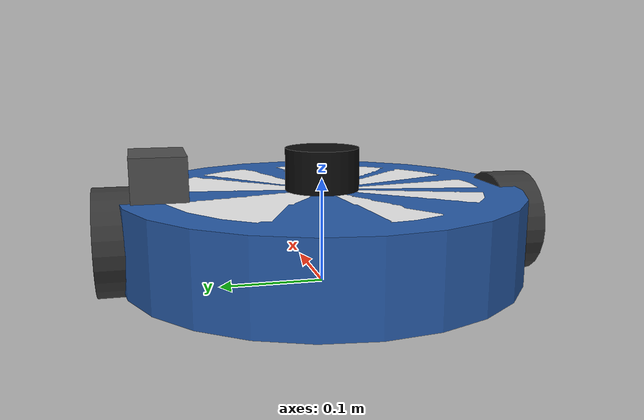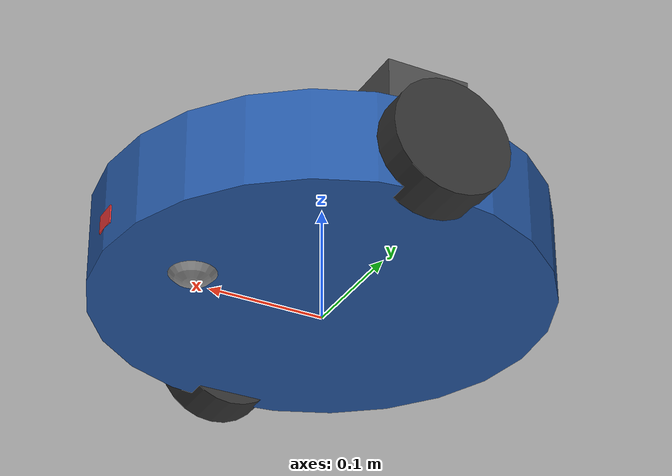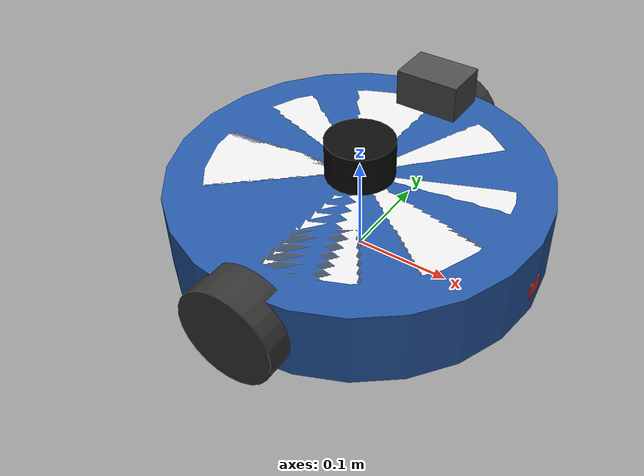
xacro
<?xml version="1.0"?>
<robot xmlns:xacro="http://www.ros.org/wiki/xacro" name="ground_robot">

  <!-- PROPERTIES / CONSTANTS -->
  <xacro:property name="robot_name"      value="ground_cleaner"/>
  <xacro:property name="base_radius"     value="0.19"/>
  <xacro:property name="base_height"     value="0.08"/>
  <xacro:property name="base_mass"       value="6.0"/>

  <xacro:property name="wheel_radius"    value="0.05"/>
  <xacro:property name="wheel_width"     value="0.04"/>
  <xacro:property name="wheel_mass"      value="0.5"/>
  <xacro:property name="wheel_separation" value="0.38"/>

  <xacro:property name="caster_radius"   value="0.025"/>
  <xacro:property name="caster_mass"     value="0.1"/>

  <xacro:property name="lidar_radius"    value="0.035"/>
  <xacro:property name="lidar_height"    value="0.04"/>
  <xacro:property name="lidar_mass"      value="0.15"/>

  <xacro:property name="imu_size"        value="0.02"/>
  <xacro:property name="imu_mass"        value="0.05"/>

  <!-- PI constant -->
  <xacro:property name="PI" value="3.14159265358979"/>

  <!-- INERTIA MACROS -->
  <xacro:macro name="box_inertia" params="m x y z">
    <inertia  ixx="${m*(y*y+z*z)/12}" ixy="0" ixz="0"
              iyy="${m*(x*x+z*z)/12}" iyz="0"
              izz="${m*(x*x+y*y)/12}" />
  </xacro:macro>

  <xacro:macro name="cylinder_inertia" params="m r h">
    <inertia  ixx="${m*(3*r*r+h*h)/12}" ixy="0" ixz="0"
              iyy="${m*(3*r*r+h*h)/12}" iyz="0"
              izz="${m*r*r/2}" />
  </xacro:macro>

  <xacro:macro name="sphere_inertia" params="m r">
    <inertia  ixx="${2*m*r*r/5}" ixy="0" ixz="0"
              iyy="${2*m*r*r/5}" iyz="0"
              izz="${2*m*r*r/5}" />
  </xacro:macro>

  <!-- BASE FOOTPRINT (TF origin) -->
  <link name="base_footprint"/>

  <joint name="base_footprint_joint" type="fixed">
    <parent link="base_footprint"/>
    <child  link="base_link"/>
    <origin xyz="0 0 ${wheel_radius}" rpy="0 0 0"/>
  </joint>

  <!-- CHASSIS -->
  <link name="base_link">
    <visual>
      <geometry>
        <cylinder radius="${base_radius}" length="${base_height}"/>
      </geometry>
      <material name="cleaner_body">
        <color rgba="0.15 0.35 0.65 1.0"/>
      </material>
    </visual>
    <visual>
      <geometry>
        <cylinder radius="${base_radius*0.8}" length="${base_height*0.5}"/>
      </geometry>
      <origin xyz="0 0 ${base_height*0.25}" rpy="0 0 0"/>
      <material name="cleaner_top">
        <color rgba="0.92 0.92 0.92 1.0"/>
      </material>
    </visual>
    <visual>
      <geometry>
        <box size="${base_radius*1.6} 0.02 ${base_height*0.2}"/>
      </geometry>
      <origin xyz="${base_radius*0.2} 0 ${-base_height*0.15}" rpy="0 0 0"/>
      <material name="bumper">
        <color rgba="0.9 0.2 0.2 1.0"/>
      </material>
    </visual>
    <collision>
      <geometry>
        <cylinder radius="${base_radius}" length="${base_height}"/>
      </geometry>
    </collision>
    <inertial>
      <mass value="${base_mass}"/>
      <origin xyz="0 0 0" rpy="0 0 0"/>
      <xacro:cylinder_inertia m="${base_mass}" r="${base_radius}" h="${base_height}"/>
    </inertial>
  </link>

  <!-- WHEEL MACRO -->
  <xacro:macro name="wheel" params="prefix side reflect">
    <link name="${prefix}_wheel">
      <visual>
        <geometry>
          <cylinder radius="${wheel_radius}" length="${wheel_width}"/>
        </geometry>
        <origin xyz="0 0 0" rpy="${PI/2} 0 0"/>
        <material name="dark_gray">
          <color rgba="0.2 0.2 0.2 1.0"/>
        </material>
      </visual>
      <collision>
        <geometry>
          <cylinder radius="${wheel_radius}" length="${wheel_width}"/>
        </geometry>
        <origin xyz="0 0 0" rpy="${PI/2} 0 0"/>
      </collision>
      <inertial>
        <mass value="${wheel_mass}"/>
        <origin xyz="0 0 0" rpy="${PI/2} 0 0"/>
        <xacro:cylinder_inertia m="${wheel_mass}" r="${wheel_radius}" h="${wheel_width}"/>
      </inertial>
    </link>

    <joint name="${prefix}_wheel_joint" type="continuous">
      <parent link="base_link"/>
      <child  link="${prefix}_wheel"/>
      <origin xyz="0 ${reflect * wheel_separation/2} 0" rpy="0 0 0"/>
      <axis   xyz="0 1 0"/>
      <dynamics damping="0.05" friction="0.1"/>
    </joint>
  </xacro:macro>

  <xacro:wheel prefix="left"  side="left"  reflect="1"/>
  <xacro:wheel prefix="right" side="right" reflect="-1"/>

  <!-- CASTER WHEEL (front) -->
  <link name="caster_link">
    <visual>
      <geometry>
        <sphere radius="${caster_radius}"/>
      </geometry>
      <material name="light_gray">
        <color rgba="0.6 0.6 0.6 1.0"/>
      </material>
    </visual>
    <collision>
      <geometry>
        <sphere radius="${caster_radius}"/>
      </geometry>
    </collision>
    <inertial>
      <mass value="${caster_mass}"/>
      <origin xyz="0 0 0" rpy="0 0 0"/>
      <xacro:sphere_inertia m="${caster_mass}" r="${caster_radius}"/>
    </inertial>
  </link>

  <joint name="caster_joint" type="fixed">
    <parent link="base_link"/>
    <child  link="caster_link"/>
    <origin xyz="${base_radius*0.6} 0 ${-(wheel_radius - caster_radius)}" rpy="0 0 0"/>
  </joint>

  <!-- LIDAR MOUNT -->
  <link name="lidar_link">
    <visual>
      <geometry>
        <cylinder radius="${lidar_radius}" length="${lidar_height}"/>
      </geometry>
      <material name="black">
        <color rgba="0.05 0.05 0.05 1.0"/>
      </material>
    </visual>
    <collision>
      <geometry>
        <cylinder radius="${lidar_radius}" length="${lidar_height}"/>
      </geometry>
    </collision>
    <inertial>
      <mass value="${lidar_mass}"/>
      <origin xyz="0 0 0" rpy="0 0 0"/>
      <xacro:cylinder_inertia m="${lidar_mass}" r="${lidar_radius}" h="${lidar_height}"/>
    </inertial>
  </link>

  <joint name="lidar_joint" type="fixed">
    <parent link="base_link"/>
    <child  link="lidar_link"/>
    <origin xyz="0 0 ${base_height/2 + lidar_height/2}" rpy="0 0 0"/>
  </joint>

  <!-- IMU LINK -->
  <link name="imu_link">
    <visual>
      <geometry>
        <box size="${imu_size} ${imu_size} ${imu_size}"/>
      </geometry>
      <material name="red">
        <color rgba="0.8 0.1 0.1 1.0"/>
      </material>
    </visual>
    <inertial>
      <mass value="${imu_mass}"/>
      <origin xyz="0 0 0"/>
      <xacro:box_inertia m="${imu_mass}" x="${imu_size}" y="${imu_size}" z="${imu_size}"/>
    </inertial>
  </link>

  <joint name="imu_joint" type="fixed">
    <parent link="base_link"/>
    <child  link="imu_link"/>
    <origin xyz="0 0 ${base_height/4}" rpy="0 0 0"/>
  </joint>

  <!-- CAMERA LINK -->
  <link name="camera_link">
    <visual>
      <geometry>
        <box size="0.07 0.05 0.04"/>
      </geometry>
      <material name="camera_body">
        <color rgba="0.3 0.3 0.3 1.0"/>
      </material>
    </visual>
    <collision>
      <geometry>
        <box size="0.07 0.05 0.04"/>
      </geometry>
    </collision>
    <inertial>
      <mass value="0.2"/>
      <origin xyz="0 0 0"/>
      <xacro:box_inertia m="0.2" x="0.07" y="0.05" z="0.04"/>
    </inertial>
  </link>

  <joint name="camera_joint" type="fixed">
    <parent link="base_link"/>
    <child  link="camera_link"/>
    <origin xyz="0 ${base_radius*0.8} ${base_height/2 + 0.02}" rpy="0 0 0"/>
  </joint>

  <!-- GAZEBO PLUGINS (Harmonic / gz-sim) -->

  <!-- Differential drive controller -->
  <gazebo>
    <plugin filename="gz-sim-diff-drive-system"
            name="gz::sim::systems::DiffDrive">
      <left_joint>left_wheel_joint</left_joint>
      <right_joint>right_wheel_joint</right_joint>
      <wheel_separation>0.38</wheel_separation>
      <wheel_radius>0.05</wheel_radius>
      <max_linear_acceleration>1.0</max_linear_acceleration>
      <max_angular_acceleration>2.0</max_angular_acceleration>
      <max_linear_velocity>0.5</max_linear_velocity>
      <max_angular_velocity>1.5</max_angular_velocity>
      <topic>cmd_vel</topic>
      <odom_topic>odom</odom_topic>
      <tf_topic>tf</tf_topic>
      <frame_id>odom</frame_id>
      <child_frame_id>base_footprint</child_frame_id>
      <odom_publish_frequency>30</odom_publish_frequency>
    </plugin>
  </gazebo>

  <!-- Joint state publisher from Gazebo -->
  <gazebo>
    <plugin filename="gz-sim-joint-state-publisher-system"
            name="gz::sim::systems::JointStatePublisher">
      <topic>joint_states</topic>
    </plugin>
  </gazebo>

  <!-- LiDAR sensor -->
  <gazebo reference="lidar_link">
    <sensor name="lidar" type="gpu_lidar">
      <topic>scan</topic>
      <!-- gz_frame_id overrides Gazebo's auto-generated frame name. -->
      <gz_frame_id>lidar_link</gz_frame_id>
      <update_rate>5</update_rate>
      <always_on>true</always_on>
      <visualize>true</visualize>
      <lidar>
        <scan>
          <horizontal>
            <samples>360</samples>
            <resolution>1</resolution>
            <min_angle>-3.14159</min_angle>
            <max_angle>3.14159</max_angle>
          </horizontal>
        </scan>
        <range>
          <min>0.22</min>
          <max>12.0</max>
          <resolution>0.01</resolution>
        </range>
        <noise>
          <type>gaussian</type>
          <mean>0.0</mean>
          <stddev>0.01</stddev>
        </noise>
      </lidar>
    </sensor>
  </gazebo>

  <!-- IMU sensor -->
  <gazebo reference="imu_link">
    <sensor name="imu" type="imu">
      <topic>imu</topic>
      <update_rate>100</update_rate>
      <always_on>true</always_on>
      <imu>
        <angular_velocity>
          <x><noise type="gaussian"><mean>0</mean><stddev>0.009</stddev></noise></x>
          <y><noise type="gaussian"><mean>0</mean><stddev>0.009</stddev></noise></y>
          <z><noise type="gaussian"><mean>0</mean><stddev>0.009</stddev></noise></z>
        </angular_velocity>
        <linear_acceleration>
          <x><noise type="gaussian"><mean>0</mean><stddev>0.021</stddev></noise></x>
          <y><noise type="gaussian"><mean>0</mean><stddev>0.021</stddev></noise></y>
          <z><noise type="gaussian"><mean>0</mean><stddev>0.021</stddev></noise></z>
        </linear_acceleration>
      </imu>
    </sensor>
  </gazebo>

  <!-- Camera sensor -->
  <gazebo reference="camera_link">
    <sensor name="camera" type="camera">
      <topic>camera/image_raw</topic>
      <update_rate>30</update_rate>
      <always_on>true</always_on>
      <visualize>false</visualize>
      <camera>
        <horizontal_fov>1.3962634</horizontal_fov>
        <image>
          <width>640</width>
          <height>480</height>
          <format>R8G8B8</format>
        </image>
        <clip>
          <near>0.1</near>
          <far>100</far>
        </clip>
        <noise>
          <type>gaussian</type>
          <mean>0.0</mean>
          <stddev>0.007</stddev>
        </noise>
      </camera>
    </sensor>
  </gazebo>

  <!-- Chassis material for Gazebo -->
  <gazebo reference="base_link">
    <material>Gazebo/Blue</material>
  </gazebo>
  <gazebo reference="left_wheel">
    <material>Gazebo/DarkGray</material>
    <mu1>1.0</mu1>
    <mu2>1.0</mu2>
  </gazebo>
  <gazebo reference="right_wheel">
    <material>Gazebo/DarkGray</material>
    <mu1>1.0</mu1>
    <mu2>1.0</mu2>
  </gazebo>
  <gazebo reference="caster_link">
    <material>Gazebo/Grey</material>
    <mu1>0.0</mu1>
    <mu2>0.0</mu2>
  </gazebo>

</robot>
